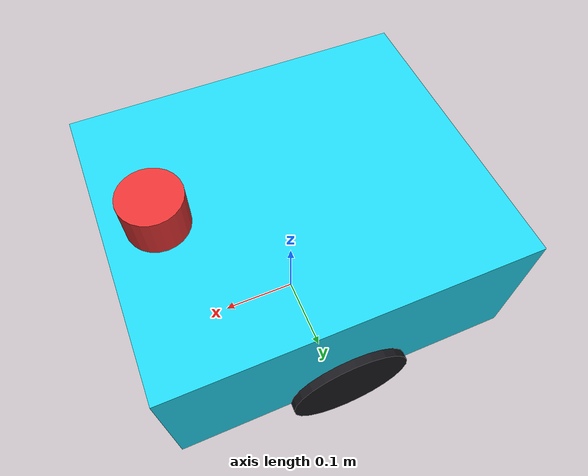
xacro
<?xml version="1.0"?>
<robot xmlns:xacro="http://www.ros.org/wiki/xacro" name="amr">

  <xacro:arg name="robot_id" default="R1"/>
  <xacro:property name="body_x" value="0.42"/>
  <xacro:property name="body_y" value="0.36"/>
  <xacro:property name="body_z" value="0.18"/>
  <xacro:property name="wheel_r" value="0.075"/>
  <xacro:property name="wheel_w" value="0.04"/>
  <xacro:property name="separation" value="0.34"/>

  <link name="base_footprint"/>

  <link name="base_link">
    <visual>
      <geometry><box size="${body_x} ${body_y} ${body_z}"/></geometry>
      <material name="body"><color rgba="0.13 0.83 0.93 1"/></material>
    </visual>
    <collision>
      <geometry><box size="${body_x} ${body_y} ${body_z}"/></geometry>
    </collision>
    <inertial>
      <mass value="8.0"/>
      <inertia ixx="0.12" ixy="0" ixz="0" iyy="0.16" iyz="0" izz="0.20"/>
    </inertial>
  </link>

  <joint name="base_joint" type="fixed">
    <parent link="base_footprint"/>
    <child link="base_link"/>
    <origin xyz="0 0 ${wheel_r + body_z/2}"/>
  </joint>

  <xacro:macro name="wheel" params="name side">
    <link name="${name}">
      <visual>
        <origin rpy="1.5708 0 0"/>
        <geometry><cylinder radius="${wheel_r}" length="${wheel_w}"/></geometry>
        <material name="tyre"><color rgba="0.1 0.1 0.12 1"/></material>
      </visual>
      <collision>
        <origin rpy="1.5708 0 0"/>
        <geometry><cylinder radius="${wheel_r}" length="${wheel_w}"/></geometry>
      </collision>
      <inertial>
        <mass value="0.6"/>
        <inertia ixx="0.002" ixy="0" ixz="0" iyy="0.002" iyz="0" izz="0.003"/>
      </inertial>
    </link>
    <joint name="${name}_joint" type="continuous">
      <parent link="base_link"/>
      <child link="${name}"/>
      <origin xyz="0 ${side * separation/2} ${-body_z/2}"/>
      <axis xyz="0 1 0"/>
    </joint>
  </xacro:macro>

  <xacro:wheel name="left_wheel" side="1"/>
  <xacro:wheel name="right_wheel" side="-1"/>

  <link name="caster">
    <visual><geometry><sphere radius="0.03"/></geometry></visual>
    <collision>
      <geometry><sphere radius="0.03"/></geometry>
      <surface><friction><ode><mu>0.0</mu><mu2>0.0</mu2></ode></friction></surface>
    </collision>
    <inertial><mass value="0.2"/>
      <inertia ixx="0.0001" ixy="0" ixz="0" iyy="0.0001" iyz="0" izz="0.0001"/>
    </inertial>
  </link>
  <joint name="caster_joint" type="fixed">
    <parent link="base_link"/>
    <child link="caster"/>
    <origin xyz="${body_x/2 - 0.05} 0 ${-body_z/2 - wheel_r + 0.03}"/>
  </joint>

  <link name="laser">
    <visual>
      <geometry><cylinder radius="0.035" length="0.05"/></geometry>
      <material name="laser"><color rgba="0.9 0.2 0.2 1"/></material>
    </visual>
    <inertial><mass value="0.1"/>
      <inertia ixx="0.0001" ixy="0" ixz="0" iyy="0.0001" iyz="0" izz="0.0001"/>
    </inertial>
  </link>
  <joint name="laser_joint" type="fixed">
    <parent link="base_link"/>
    <child link="laser"/>
    <origin xyz="${body_x/2 - 0.06} 0 ${body_z/2 + 0.03}"/>
  </joint>

  <!-- ================= Gazebo plugins ================= -->

  <gazebo reference="left_wheel"><mu1>1.0</mu1><mu2>1.0</mu2></gazebo>
  <gazebo reference="right_wheel"><mu1>1.0</mu1><mu2>1.0</mu2></gazebo>
  <gazebo reference="caster"><mu1>0.0</mu1><mu2>0.0</mu2></gazebo>

  <gazebo>
    <plugin name="diff_drive" filename="libgazebo_ros_diff_drive.so">
      <ros>
        <namespace>/$(arg robot_id)</namespace>
        <remapping>cmd_vel:=cmd_vel</remapping>
        <remapping>odom:=odom</remapping>
      </ros>
      <left_joint>left_wheel_joint</left_joint>
      <right_joint>right_wheel_joint</right_joint>
      <wheel_separation>${separation}</wheel_separation>
      <wheel_diameter>${2 * wheel_r}</wheel_diameter>
      <max_wheel_torque>12.0</max_wheel_torque>
      <max_wheel_acceleration>1.5</max_wheel_acceleration>
      <publish_odom>true</publish_odom>
      <publish_odom_tf>true</publish_odom_tf>
      <publish_wheel_tf>true</publish_wheel_tf>
      <odometry_frame>$(arg robot_id)/odom</odometry_frame>
      <robot_base_frame>$(arg robot_id)/base_footprint</robot_base_frame>
      <update_rate>30</update_rate>
    </plugin>
  </gazebo>

  <gazebo reference="laser">
    <sensor name="lidar" type="ray">
      <pose>0 0 0 0 0 0</pose>
      <always_on>true</always_on>
      <update_rate>10</update_rate>
      <ray>
        <scan><horizontal>
          <samples>180</samples><resolution>1</resolution>
          <min_angle>-3.14159</min_angle><max_angle>3.14159</max_angle>
        </horizontal></scan>
        <range><min>0.15</min><max>6.0</max><resolution>0.02</resolution></range>
      </ray>
      <plugin name="laser_plugin" filename="libgazebo_ros_ray_sensor.so">
        <ros>
          <namespace>/$(arg robot_id)</namespace>
          <remapping>~/out:=scan</remapping>
        </ros>
        <output_type>sensor_msgs/LaserScan</output_type>
        <frame_name>$(arg robot_id)/laser</frame_name>
      </plugin>
    </sensor>
  </gazebo>

</robot>
